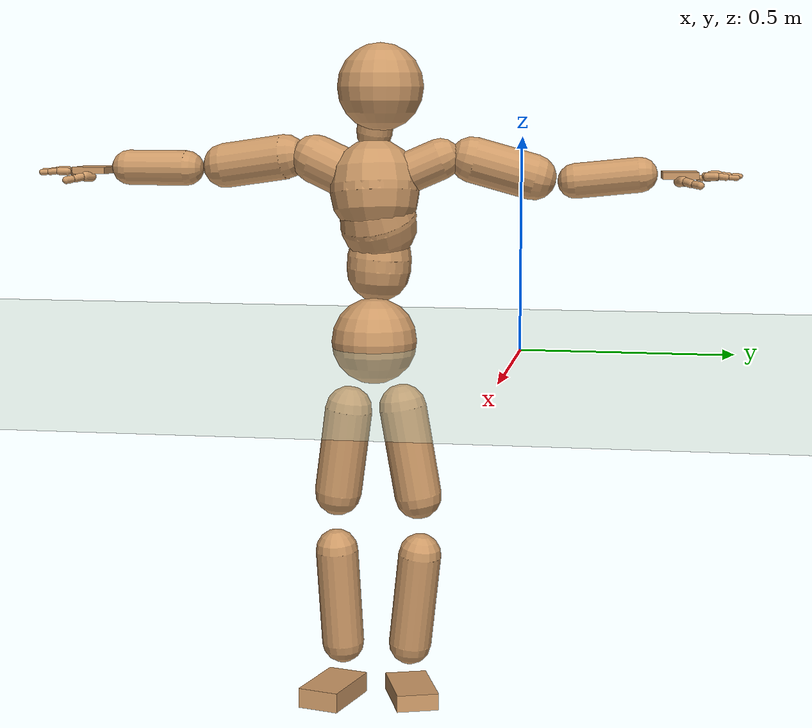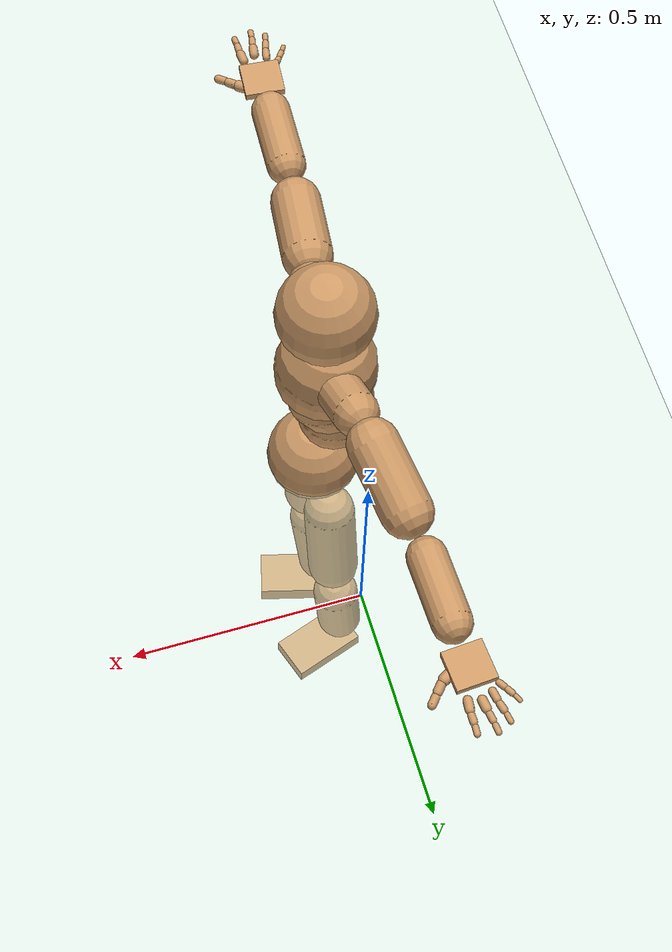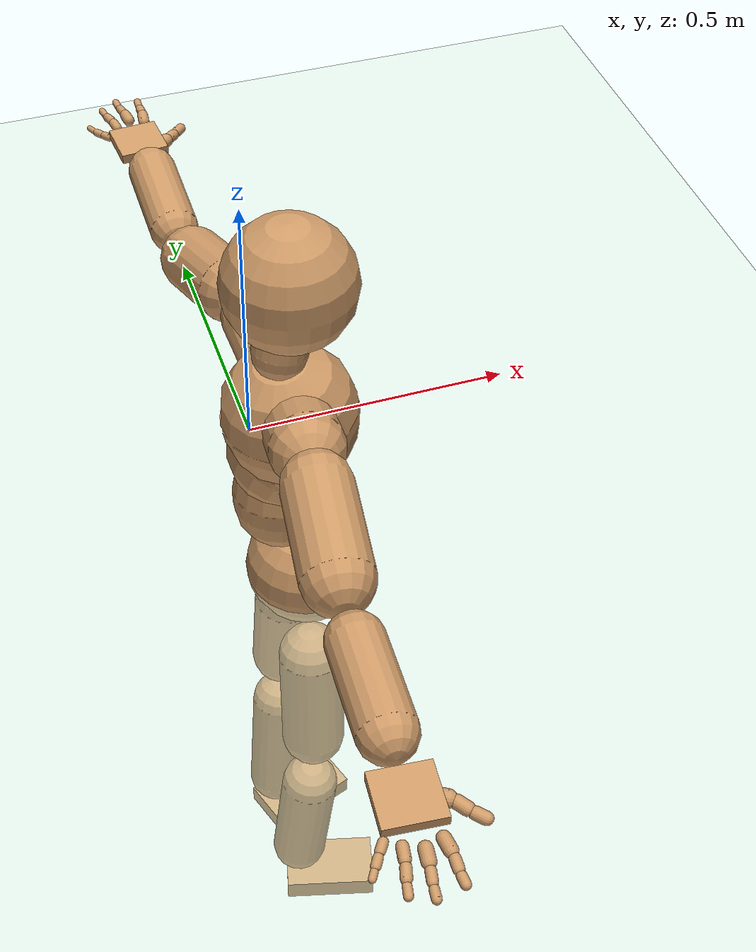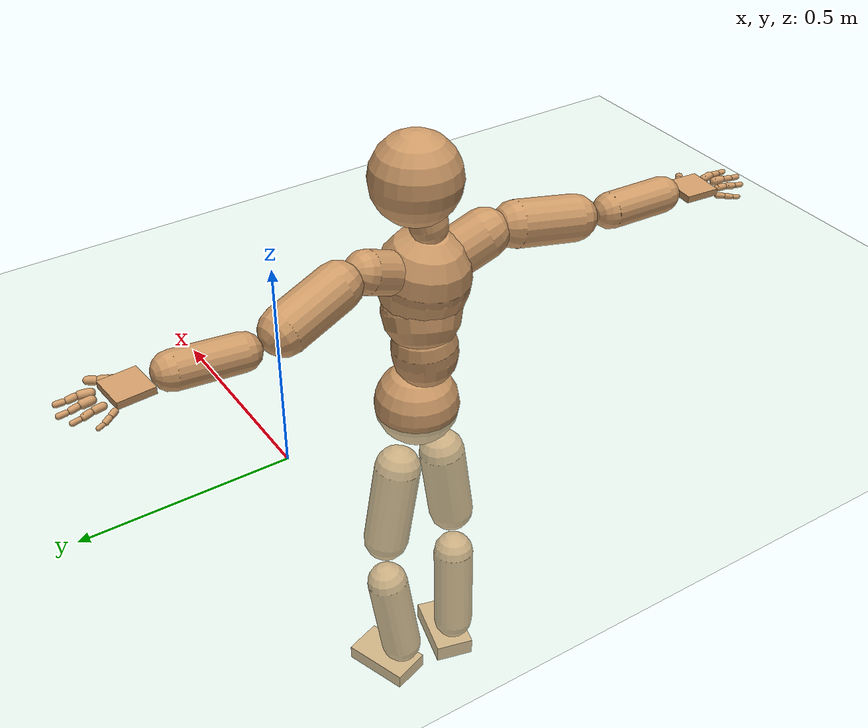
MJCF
<mujoco model="humanoid">
  <compiler coordinate="local" angle="radian"/>
  <default>
    <joint damping="0.0" armature="0.01" stiffness="0.0" limited="true"/>
    <geom conaffinity="1" condim="3" contype="7" margin="0.001" rgba="0.8 0.6 .4 1"/>
  </default>
  <asset>
    <texture type="skybox" builtin="gradient" rgb1=".4 .5 .6" rgb2="0 0 0" width="100" height="100"/>
    <texture builtin="flat" height="1278" mark="cross" markrgb="1 1 1" name="texgeom" random="0.01" rgb1="0.8 0.6 0.4" rgb2="0.8 0.6 0.4" type="cube" width="127"/>
    <texture builtin="checker" height="100" name="texplane" rgb1="0 0 0" rgb2="0.8 0.8 0.8" type="2d" width="100"/>
    <material name="MatPlane" reflectance="0.5" shininess="1" specular="1" texrepeat="60 60" texture="texplane"/>
    <material name="geom" texture="texgeom" texuniform="true"/>
  </asset>
  <worldbody>
    <light cutoff="100" diffuse="1 1 1" dir="-0 0 -1.3" directional="true" exponent="1" pos="0 0 1.3" specular=".1 .1 .1"/>
    <geom conaffinity="1" condim="3" name="floor" pos="0 0 0" rgba="0.8 0.9 0.8 1" size="100 100 .2" type="plane" material="MatPlane"/>
    <body name="Pelvis" pos="0.0015 -0.3507 0.0139">
      <freejoint name="Pelvis"/>
      <geom type="sphere" contype="1" conaffinity="1" density="500" size="0.1033" pos="0.0000 0.0000 0.0000" name="Pelvis"/>
      <body name="L_Hip" pos="-0.0174 0.0542 -0.0915">
        <joint name="L_Hip_x" type="hinge" pos="0 0 0" axis="1 0 0" stiffness="800" damping="80" armature="0.02" range="-180.0000 180.0000"/>
        <joint name="L_Hip_y" type="hinge" pos="0 0 0" axis="0 1 0" stiffness="800" damping="80" armature="0.02" range="-180.0000 180.0000"/>
        <joint name="L_Hip_z" type="hinge" pos="0 0 0" axis="0 0 1" stiffness="800" damping="80" armature="0.02" range="-180.0000 180.0000"/>
        <geom type="capsule" contype="1" conaffinity="1" density="500" fromto="-0.0004 0.0125 -0.0725 -0.0018 0.0501 -0.2898" size="0.0574" name="L_Hip"/>
        <body name="L_Knee" pos="-0.0022 0.0626 -0.3623">
          <joint name="L_Knee_x" type="hinge" pos="0 0 0" axis="1 0 0" stiffness="800" damping="80" armature="0.02" range="-180.0000 180.0000"/>
          <joint name="L_Knee_y" type="hinge" pos="0 0 0" axis="0 1 0" stiffness="800" damping="80" armature="0.02" range="-180.0000 180.0000"/>
          <joint name="L_Knee_z" type="hinge" pos="0 0 0" axis="0 0 1" stiffness="800" damping="80" armature="0.02" range="-180.0000 180.0000"/>
          <geom type="capsule" contype="1" conaffinity="1" density="500" fromto="-0.0072 -0.0091 -0.0778 -0.0288 -0.0363 -0.3110" size="0.0527" name="L_Knee"/>
          <body name="L_Ankle" pos="-0.036 -0.0453 -0.3888">
            <joint name="L_Ankle_x" type="hinge" pos="0 0 0" axis="1 0 0" stiffness="800" damping="80" armature="0.02" range="-180.0000 180.0000"/>
            <joint name="L_Ankle_y" type="hinge" pos="0 0 0" axis="0 1 0" stiffness="800" damping="80" armature="0.02" range="-180.0000 180.0000"/>
            <joint name="L_Ankle_z" type="hinge" pos="0 0 0" axis="0 0 1" stiffness="800" damping="80" armature="0.02" range="-180.0000 180.0000"/>
            <geom type="box" contype="1" conaffinity="1" density="500" pos="0.0637 0.0217 -0.0279" size="0.0882 0.0512 0.0205" quat="0.9866 0.0000 0.0000 0.1633" name="L_Ankle"/>
            <body name="L_Toe" pos="0.1273 0.0433 -0.0557">
              <joint name="L_Toe_x" type="hinge" pos="0 0 0" axis="1 0 0" stiffness="500" damping="50" armature="0.02" range="-180.0000 180.0000"/>
              <joint name="L_Toe_y" type="hinge" pos="0 0 0" axis="0 1 0" stiffness="500" damping="50" armature="0.02" range="-180.0000 180.0000"/>
              <joint name="L_Toe_z" type="hinge" pos="0 0 0" axis="0 0 1" stiffness="500" damping="50" armature="0.02" range="-180.0000 180.0000"/>
              <geom type="box" contype="1" conaffinity="1" density="500" pos="0.0000 0.0000 0.0287" size="0.001 0.0024 0.0011" quat="0.9858 0.0000 0.0000 0.1678" name="L_Toe"/>
            </body>
          </body>
        </body>
      </body>
      <body name="R_Hip" pos="-0.0108 -0.0561 -0.1024">
        <joint name="R_Hip_x" type="hinge" pos="0 0 0" axis="1 0 0" stiffness="800" damping="80" armature="0.02" range="-180.0000 180.0000"/>
        <joint name="R_Hip_y" type="hinge" pos="0 0 0" axis="0 1 0" stiffness="800" damping="80" armature="0.02" range="-180.0000 180.0000"/>
        <joint name="R_Hip_z" type="hinge" pos="0 0 0" axis="0 0 1" stiffness="800" damping="80" armature="0.02" range="-180.0000 180.0000"/>
        <geom type="capsule" contype="1" conaffinity="1" density="500" fromto="-0.0020 -0.0094 -0.0692 -0.0080 -0.0376 -0.2768" size="0.0572" name="R_Hip"/>
        <body name="R_Knee" pos="-0.0101 -0.047 -0.346">
          <joint name="R_Knee_x" type="hinge" pos="0 0 0" axis="1 0 0" stiffness="800" damping="80" armature="0.02" range="-180.0000 180.0000"/>
          <joint name="R_Knee_y" type="hinge" pos="0 0 0" axis="0 1 0" stiffness="800" damping="80" armature="0.02" range="-180.0000 180.0000"/>
          <joint name="R_Knee_z" type="hinge" pos="0 0 0" axis="0 0 1" stiffness="800" damping="80" armature="0.02" range="-180.0000 180.0000"/>
          <geom type="capsule" contype="1" conaffinity="1" density="500" fromto="-0.0070 0.0035 -0.0802 -0.0279 0.0139 -0.3208" size="0.0524" name="R_Knee"/>
          <body name="R_Ankle" pos="-0.0349 0.0174 -0.4009">
            <joint name="R_Ankle_x" type="hinge" pos="0 0 0" axis="1 0 0" stiffness="800" damping="80" armature="0.02" range="-180.0000 180.0000"/>
            <joint name="R_Ankle_y" type="hinge" pos="0 0 0" axis="0 1 0" stiffness="800" damping="80" armature="0.02" range="-180.0000 180.0000"/>
            <joint name="R_Ankle_z" type="hinge" pos="0 0 0" axis="0 0 1" stiffness="800" damping="80" armature="0.02" range="-180.0000 180.0000"/>
            <geom type="box" contype="1" conaffinity="1" density="500" pos="0.0670 -0.0174 -0.0274" size="0.0882 0.0512 0.0244" quat="0.9920 0.0000 0.0000 -0.1266" name="R_Ankle"/>
            <body name="R_Toe" pos="0.1341 -0.0348 -0.0548">
              <joint name="R_Toe_x" type="hinge" pos="0 0 0" axis="1 0 0" stiffness="500" damping="50" armature="0.02" range="-180.0000 180.0000"/>
              <joint name="R_Toe_y" type="hinge" pos="0 0 0" axis="0 1 0" stiffness="500" damping="50" armature="0.02" range="-180.0000 180.0000"/>
              <joint name="R_Toe_z" type="hinge" pos="0 0 0" axis="0 0 1" stiffness="500" damping="50" armature="0.02" range="-180.0000 180.0000"/>
              <geom type="box" contype="1" conaffinity="1" density="500" pos="0.0000 0.0000 0.0243" size="0.001 0.0024 0.0011" quat="0.9930 0.0000 0.0000 -0.1180" name="R_Toe"/>
            </body>
          </body>
        </body>
      </body>
      <body name="Torso" pos="-0.0412 -0.0009 0.1084">
        <joint name="Torso_x" type="hinge" pos="0 0 0" axis="1 0 0" stiffness="1000" damping="100" armature="0.02" range="-180.0000 180.0000"/>
        <joint name="Torso_y" type="hinge" pos="0 0 0" axis="0 1 0" stiffness="1000" damping="100" armature="0.02" range="-180.0000 180.0000"/>
        <joint name="Torso_z" type="hinge" pos="0 0 0" axis="0 0 1" stiffness="1000" damping="100" armature="0.02" range="-180.0000 180.0000"/>
        <geom type="capsule" contype="1" conaffinity="1" density="500" fromto="0.0008 0.0072 0.0886 0.0005 0.0048 0.0591" size="0.0775" name="Torso"/>
        <body name="Spine" pos="0.0014 0.0119 0.1477">
          <joint name="Spine_x" type="hinge" pos="0 0 0" axis="1 0 0" stiffness="1000" damping="100" armature="0.02" range="-180.0000 180.0000"/>
          <joint name="Spine_y" type="hinge" pos="0 0 0" axis="0 1 0" stiffness="1000" damping="100" armature="0.02" range="-180.0000 180.0000"/>
          <joint name="Spine_z" type="hinge" pos="0 0 0" axis="0 0 1" stiffness="1000" damping="100" armature="0.02" range="-180.0000 180.0000"/>
          <geom type="capsule" contype="1" conaffinity="1" density="500" fromto="0.0139 -0.0064 0.0341 0.0093 -0.0043 0.0227" size="0.093" name="Spine"/>
          <body name="Chest" pos="0.0232 -0.0107 0.0568">
            <joint name="Chest_x" type="hinge" pos="0 0 0" axis="1 0 0" stiffness="1000" damping="100" armature="0.02" range="-180.0000 180.0000"/>
            <joint name="Chest_y" type="hinge" pos="0 0 0" axis="0 1 0" stiffness="1000" damping="100" armature="0.02" range="-180.0000 180.0000"/>
            <joint name="Chest_z" type="hinge" pos="0 0 0" axis="0 0 1" stiffness="1000" damping="100" armature="0.02" range="-180.0000 180.0000"/>
            <geom type="capsule" contype="1" conaffinity="1" density="500" fromto="-0.0083 -0.0031 0.0601 -0.0055 -0.0021 0.0400" size="0.1076" name="Chest"/>
            <body name="Neck" pos="-0.0271 -0.0105 0.1553">
              <joint name="Neck_x" type="hinge" pos="0 0 0" axis="1 0 0" stiffness="500" damping="50" armature="0.02" range="-180.0000 180.0000"/>
              <joint name="Neck_y" type="hinge" pos="0 0 0" axis="0 1 0" stiffness="500" damping="50" armature="0.02" range="-180.0000 180.0000"/>
              <joint name="Neck_z" type="hinge" pos="0 0 0" axis="0 0 1" stiffness="500" damping="50" armature="0.02" range="-180.0000 180.0000"/>
              <geom type="capsule" contype="1" conaffinity="1" density="500" fromto="0.0056 0.0047 0.0267 0.0226 0.0189 0.1069" size="0.0433" name="Neck"/>
              <body name="Head" pos="0.0282 0.0236 0.1336">
                <joint name="Head_x" type="hinge" pos="0 0 0" axis="1 0 0" stiffness="500" damping="50" armature="0.02" range="-180.0000 180.0000"/>
                <joint name="Head_y" type="hinge" pos="0 0 0" axis="0 1 0" stiffness="500" damping="50" armature="0.02" range="-180.0000 180.0000"/>
                <joint name="Head_z" type="hinge" pos="0 0 0" axis="0 0 1" stiffness="500" damping="50" armature="0.02" range="-180.0000 180.0000"/>
                <geom type="sphere" contype="1" conaffinity="1" density="500" size="0.1032" pos="0.0000 0.0000 0.0000" name="Head"/>
              </body>
            </body>
            <body name="L_Thorax" pos="-0.0054 0.0418 0.0719">
              <joint name="L_Thorax_x" type="hinge" pos="0 0 0" axis="1 0 0" stiffness="500" damping="50" armature="0.02" range="-180.0000 180.0000"/>
              <joint name="L_Thorax_y" type="hinge" pos="0 0 0" axis="0 1 0" stiffness="500" damping="50" armature="0.02" range="-180.0000 180.0000"/>
              <joint name="L_Thorax_z" type="hinge" pos="0 0 0" axis="0 0 1" stiffness="500" damping="50" armature="0.02" range="-180.0000 180.0000"/>
              <geom type="capsule" contype="1" conaffinity="1" density="500" fromto="-0.0040 0.0277 0.0121 -0.0159 0.1109 0.0483" size="0.0491" name="L_Thorax"/>
              <body name="L_Shoulder" pos="-0.0199 0.1387 0.0604">
                <joint name="L_Shoulder_x" type="hinge" pos="0 0 0" axis="1 0 0" stiffness="500" damping="50" armature="0.02" range="-180.0000 180.0000"/>
                <joint name="L_Shoulder_y" type="hinge" pos="0 0 0" axis="0 1 0" stiffness="500" damping="50" armature="0.02" range="-180.0000 180.0000"/>
                <joint name="L_Shoulder_z" type="hinge" pos="0 0 0" axis="0 0 1" stiffness="500" damping="50" armature="0.02" range="-180.0000 180.0000"/>
                <geom type="capsule" contype="1" conaffinity="1" density="500" fromto="-0.0090 0.0475 -0.0138 -0.0358 0.1902 -0.0551" size="0.055" name="L_Shoulder"/>
                <body name="L_Elbow" pos="-0.0448 0.2377 -0.0689">
                  <joint name="L_Elbow_x" type="hinge" pos="0 0 0" axis="1 0 0" stiffness="500" damping="50" armature="0.02" range="-720.0000 720.0000"/>
                  <joint name="L_Elbow_y" type="hinge" pos="0 0 0" axis="0 1 0" stiffness="500" damping="50" armature="0.02" range="-720.0000 720.0000"/>
                  <joint name="L_Elbow_z" type="hinge" pos="0 0 0" axis="0 0 1" stiffness="500" damping="50" armature="0.02" range="-720.0000 720.0000"/>
                  <geom type="capsule" contype="1" conaffinity="1" density="500" fromto="-0.0002 0.0507 0.0052 -0.0010 0.2028 0.0208" size="0.0417" name="L_Elbow"/>
                  <body name="L_Wrist" pos="-0.0012 0.2535 0.026">
                    <joint name="L_Wrist_x" type="hinge" pos="0 0 0" axis="1 0 0" stiffness="300" damping="30" armature="0.02" range="-180.0000 180.0000"/>
                    <joint name="L_Wrist_y" type="hinge" pos="0 0 0" axis="0 1 0" stiffness="300" damping="30" armature="0.02" range="-180.0000 180.0000"/>
                    <joint name="L_Wrist_z" type="hinge" pos="0 0 0" axis="0 0 1" stiffness="300" damping="30" armature="0.02" range="-180.0000 180.0000"/>
                    <geom type="box" contype="1" conaffinity="1" density="500" pos="-0.0030 0.0421 -0.0055" size="0.0419 0.0423 0.0081" quat="0.7321 0.0000 0.0000 -0.6812" name="L_Wrist"/>
                    <body name="L_Index1" pos="0.0205 0.099 -0.0078">
                      <joint name="L_Index1_x" type="hinge" pos="0 0 0" axis="1 0 0" stiffness="100" damping="10" armature="0.02" range="-180.0000 180.0000"/>
                      <joint name="L_Index1_y" type="hinge" pos="0 0 0" axis="0 1 0" stiffness="100" damping="10" armature="0.02" range="-180.0000 180.0000"/>
                      <joint name="L_Index1_z" type="hinge" pos="0 0 0" axis="0 0 1" stiffness="100" damping="10" armature="0.02" range="-180.0000 180.0000"/>
                      <geom type="capsule" contype="1" conaffinity="1" density="500" fromto="0.0007 0.0064 0.0003 0.0028 0.0257 0.0013" size="0.0097" name="L_Index1"/>
                      <body name="L_Index2" pos="0.0035 0.0321 0.0016">
                        <joint name="L_Index2_x" type="hinge" pos="0 0 0" axis="1 0 0" stiffness="100" damping="10" armature="0.02" range="-180.0000 180.0000"/>
                        <joint name="L_Index2_y" type="hinge" pos="0 0 0" axis="0 1 0" stiffness="100" damping="10" armature="0.02" range="-180.0000 180.0000"/>
                        <joint name="L_Index2_z" type="hinge" pos="0 0 0" axis="0 0 1" stiffness="100" damping="10" armature="0.02" range="-180.0000 180.0000"/>
                        <geom type="capsule" contype="1" conaffinity="1" density="500" fromto="-0.0001 0.0045 -0.0005 -0.0004 0.0181 -0.0021" size="0.0078" name="L_Index2"/>
                        <body name="L_Index3" pos="-0.0005 0.0226 -0.0026">
                          <joint name="L_Index3_x" type="hinge" pos="0 0 0" axis="1 0 0" stiffness="100" damping="10" armature="0.02" range="-180.0000 180.0000"/>
                          <joint name="L_Index3_y" type="hinge" pos="0 0 0" axis="0 1 0" stiffness="100" damping="10" armature="0.02" range="-180.0000 180.0000"/>
                          <joint name="L_Index3_z" type="hinge" pos="0 0 0" axis="0 0 1" stiffness="100" damping="10" armature="0.02" range="-180.0000 180.0000"/>
                          <geom type="capsule" contype="1" conaffinity="1" density="500" fromto="0.0003 0.0049 -0.0001 0.0012 0.0197 -0.0005" size="0.0066" name="L_Index3"/>
                        </body>
                      </body>
                    </body>
                    <body name="L_Middle1" pos="-0.0039 0.107 -0.0051">
                      <joint name="L_Middle1_x" type="hinge" pos="0 0 0" axis="1 0 0" stiffness="100" damping="10" armature="0.02" range="-180.0000 180.0000"/>
                      <joint name="L_Middle1_y" type="hinge" pos="0 0 0" axis="0 1 0" stiffness="100" damping="10" armature="0.02" range="-180.0000 180.0000"/>
                      <joint name="L_Middle1_z" type="hinge" pos="0 0 0" axis="0 0 1" stiffness="100" damping="10" armature="0.02" range="-180.0000 180.0000"/>
                      <geom type="capsule" contype="1" conaffinity="1" density="500" fromto="-0.0009 0.0062 0.0001 -0.0034 0.0247 0.0004" size="0.0098" name="L_Middle1"/>
                      <body name="L_Middle2" pos="-0.0043 0.0308 0.0005">
                        <joint name="L_Middle2_x" type="hinge" pos="0 0 0" axis="1 0 0" stiffness="100" damping="10" armature="0.02" range="-180.0000 180.0000"/>
                        <joint name="L_Middle2_y" type="hinge" pos="0 0 0" axis="0 1 0" stiffness="100" damping="10" armature="0.02" range="-180.0000 180.0000"/>
                        <joint name="L_Middle2_z" type="hinge" pos="0 0 0" axis="0 0 1" stiffness="100" damping="10" armature="0.02" range="-180.0000 180.0000"/>
                        <geom type="capsule" contype="1" conaffinity="1" density="500" fromto="-0.0009 0.0047 -0.0005 -0.0036 0.0188 -0.0020" size="0.0073" name="L_Middle2"/>
                        <body name="L_Middle3" pos="-0.0044 0.0234 -0.0025">
                          <joint name="L_Middle3_x" type="hinge" pos="0 0 0" axis="1 0 0" stiffness="100" damping="10" armature="0.02" range="-180.0000 180.0000"/>
                          <joint name="L_Middle3_y" type="hinge" pos="0 0 0" axis="0 1 0" stiffness="100" damping="10" armature="0.02" range="-180.0000 180.0000"/>
                          <joint name="L_Middle3_z" type="hinge" pos="0 0 0" axis="0 0 1" stiffness="100" damping="10" armature="0.02" range="-180.0000 180.0000"/>
                          <geom type="capsule" contype="1" conaffinity="1" density="500" fromto="-0.0005 0.0051 -0.0001 -0.0020 0.0204 -0.0004" size="0.0063" name="L_Middle3"/>
                        </body>
                      </body>
                    </body>
                    <body name="L_Pinky1" pos="-0.0456 0.0822 -0.014">
                      <joint name="L_Pinky1_x" type="hinge" pos="0 0 0" axis="1 0 0" stiffness="100" damping="10" armature="0.02" range="-180.0000 180.0000"/>
                      <joint name="L_Pinky1_y" type="hinge" pos="0 0 0" axis="0 1 0" stiffness="100" damping="10" armature="0.02" range="-180.0000 180.0000"/>
                      <joint name="L_Pinky1_z" type="hinge" pos="0 0 0" axis="0 0 1" stiffness="100" damping="10" armature="0.02" range="-180.0000 180.0000"/>
                      <geom type="capsule" contype="1" conaffinity="1" density="500" fromto="-0.0024 0.0033 -0.0003 -0.0095 0.0133 -0.0013" size="0.007" name="L_Pinky1"/>
                      <body name="L_Pinky2" pos="-0.0118 0.0166 -0.0016">
                        <joint name="L_Pinky2_x" type="hinge" pos="0 0 0" axis="1 0 0" stiffness="100" damping="10" armature="0.02" range="-180.0000 180.0000"/>
                        <joint name="L_Pinky2_y" type="hinge" pos="0 0 0" axis="0 1 0" stiffness="100" damping="10" armature="0.02" range="-180.0000 180.0000"/>
                        <joint name="L_Pinky2_z" type="hinge" pos="0 0 0" axis="0 0 1" stiffness="100" damping="10" armature="0.02" range="-180.0000 180.0000"/>
                        <geom type="capsule" contype="1" conaffinity="1" density="500" fromto="-0.0022 0.0032 -0.0004 -0.0087 0.0130 -0.0016" size="0.0067" name="L_Pinky2"/>
                        <body name="L_Pinky3" pos="-0.0109 0.0162 -0.0019">
                          <joint name="L_Pinky3_x" type="hinge" pos="0 0 0" axis="1 0 0" stiffness="100" damping="10" armature="0.02" range="-180.0000 180.0000"/>
                          <joint name="L_Pinky3_y" type="hinge" pos="0 0 0" axis="0 1 0" stiffness="100" damping="10" armature="0.02" range="-180.0000 180.0000"/>
                          <joint name="L_Pinky3_z" type="hinge" pos="0 0 0" axis="0 0 1" stiffness="100" damping="10" armature="0.02" range="-180.0000 180.0000"/>
                          <geom type="capsule" contype="1" conaffinity="1" density="500" fromto="-0.0018 0.0036 0.0000 -0.0071 0.0146 0.0000" size="0.005" name="L_Pinky3"/>
                        </body>
                      </body>
                    </body>
                    <body name="L_Ring1" pos="-0.0285 0.0952 -0.0083">
                      <joint name="L_Ring1_x" type="hinge" pos="0 0 0" axis="1 0 0" stiffness="100" damping="10" armature="0.02" range="-180.0000 180.0000"/>
                      <joint name="L_Ring1_y" type="hinge" pos="0 0 0" axis="0 1 0" stiffness="100" damping="10" armature="0.02" range="-180.0000 180.0000"/>
                      <joint name="L_Ring1_z" type="hinge" pos="0 0 0" axis="0 0 1" stiffness="100" damping="10" armature="0.02" range="-180.0000 180.0000"/>
                      <geom type="capsule" contype="1" conaffinity="1" density="500" fromto="-0.0010 0.0057 0.0001 -0.0040 0.0228 0.0003" size="0.0083" name="L_Ring1"/>
                      <body name="L_Ring2" pos="-0.005 0.0284 0.0004">
                        <joint name="L_Ring2_x" type="hinge" pos="0 0 0" axis="1 0 0" stiffness="100" damping="10" armature="0.02" range="-180.0000 180.0000"/>
                        <joint name="L_Ring2_y" type="hinge" pos="0 0 0" axis="0 1 0" stiffness="100" damping="10" armature="0.02" range="-180.0000 180.0000"/>
                        <joint name="L_Ring2_z" type="hinge" pos="0 0 0" axis="0 0 1" stiffness="100" damping="10" armature="0.02" range="-180.0000 180.0000"/>
                        <geom type="capsule" contype="1" conaffinity="1" density="500" fromto="-0.0013 0.0046 -0.0005 -0.0053 0.0184 -0.0019" size="0.0077" name="L_Ring2"/>
                        <body name="L_Ring3" pos="-0.0067 0.023 -0.0024">
                          <joint name="L_Ring3_x" type="hinge" pos="0 0 0" axis="1 0 0" stiffness="100" damping="10" armature="0.02" range="-180.0000 180.0000"/>
                          <joint name="L_Ring3_y" type="hinge" pos="0 0 0" axis="0 1 0" stiffness="100" damping="10" armature="0.02" range="-180.0000 180.0000"/>
                          <joint name="L_Ring3_z" type="hinge" pos="0 0 0" axis="0 0 1" stiffness="100" damping="10" armature="0.02" range="-180.0000 180.0000"/>
                          <geom type="capsule" contype="1" conaffinity="1" density="500" fromto="-0.0009 0.0050 -0.0001 -0.0037 0.0200 -0.0003" size="0.0059" name="L_Ring3"/>
                        </body>
                      </body>
                    </body>
                    <body name="L_Thumb1" pos="0.027 0.0378 -0.0193">
                      <joint name="L_Thumb1_x" type="hinge" pos="0 0 0" axis="1 0 0" stiffness="100" damping="10" armature="0.02" range="-180.0000 180.0000"/>
                      <joint name="L_Thumb1_y" type="hinge" pos="0 0 0" axis="0 1 0" stiffness="100" damping="10" armature="0.02" range="-180.0000 180.0000"/>
                      <joint name="L_Thumb1_z" type="hinge" pos="0 0 0" axis="0 0 1" stiffness="100" damping="10" armature="0.02" range="-180.0000 180.0000"/>
                      <geom type="capsule" contype="1" conaffinity="1" density="500" fromto="0.0053 0.0032 0.0004 0.0212 0.0126 0.0015" size="0.0124" name="L_Thumb1"/>
                      <body name="L_Thumb2" pos="0.0265 0.0158 0.0019">
                        <joint name="L_Thumb2_x" type="hinge" pos="0 0 0" axis="1 0 0" stiffness="100" damping="10" armature="0.02" range="-180.0000 180.0000"/>
                        <joint name="L_Thumb2_y" type="hinge" pos="0 0 0" axis="0 1 0" stiffness="100" damping="10" armature="0.02" range="-180.0000 180.0000"/>
                        <joint name="L_Thumb2_z" type="hinge" pos="0 0 0" axis="0 0 1" stiffness="100" damping="10" armature="0.02" range="-180.0000 180.0000"/>
                        <geom type="capsule" contype="1" conaffinity="1" density="500" fromto="0.0033 0.0039 -0.0010 0.0133 0.0154 -0.0041" size="0.0099" name="L_Thumb2"/>
                        <body name="L_Thumb3" pos="0.0166 0.0193 -0.0052">
                          <joint name="L_Thumb3_x" type="hinge" pos="0 0 0" axis="1 0 0" stiffness="100" damping="10" armature="0.02" range="-180.0000 180.0000"/>
                          <joint name="L_Thumb3_y" type="hinge" pos="0 0 0" axis="0 1 0" stiffness="100" damping="10" armature="0.02" range="-180.0000 180.0000"/>
                          <joint name="L_Thumb3_z" type="hinge" pos="0 0 0" axis="0 0 1" stiffness="100" damping="10" armature="0.02" range="-180.0000 180.0000"/>
                          <geom type="capsule" contype="1" conaffinity="1" density="500" fromto="0.0037 0.0043 -0.0006 0.0149 0.0170 -0.0025" size="0.009" name="L_Thumb3"/>
                        </body>
                      </body>
                    </body>
                  </body>
                </body>
              </body>
            </body>
            <body name="R_Thorax" pos="-0.009 -0.0469 0.073">
              <joint name="R_Thorax_x" type="hinge" pos="0 0 0" axis="1 0 0" stiffness="500" damping="50" armature="0.02" range="-180.0000 180.0000"/>
              <joint name="R_Thorax_y" type="hinge" pos="0 0 0" axis="0 1 0" stiffness="500" damping="50" armature="0.02" range="-180.0000 180.0000"/>
              <joint name="R_Thorax_z" type="hinge" pos="0 0 0" axis="0 0 1" stiffness="500" damping="50" armature="0.02" range="-180.0000 180.0000"/>
              <geom type="capsule" contype="1" conaffinity="1" density="500" fromto="-0.0036 -0.0256 0.0114 -0.0144 -0.1026 0.0456" size="0.0582" name="R_Thorax"/>
              <body name="R_Shoulder" pos="-0.018 -0.1282 0.057">
                <joint name="R_Shoulder_x" type="hinge" pos="0 0 0" axis="1 0 0" stiffness="500" damping="50" armature="0.02" range="-180.0000 180.0000"/>
                <joint name="R_Shoulder_y" type="hinge" pos="0 0 0" axis="0 1 0" stiffness="500" damping="50" armature="0.02" range="-180.0000 180.0000"/>
                <joint name="R_Shoulder_z" type="hinge" pos="0 0 0" axis="0 0 1" stiffness="500" damping="50" armature="0.02" range="-180.0000 180.0000"/>
                <geom type="capsule" contype="1" conaffinity="1" density="500" fromto="-0.0062 -0.0509 -0.0075 -0.0249 -0.2034 -0.0300" size="0.0543" name="R_Shoulder"/>
                <body name="R_Elbow" pos="-0.0311 -0.2543 -0.0376">
                  <joint name="R_Elbow_x" type="hinge" pos="0 0 0" axis="1 0 0" stiffness="500" damping="50" armature="0.02" range="-720.0000 720.0000"/>
                  <joint name="R_Elbow_y" type="hinge" pos="0 0 0" axis="0 1 0" stiffness="500" damping="50" armature="0.02" range="-720.0000 720.0000"/>
                  <joint name="R_Elbow_z" type="hinge" pos="0 0 0" axis="0 0 1" stiffness="500" damping="50" armature="0.02" range="-720.0000 720.0000"/>
                  <geom type="capsule" contype="1" conaffinity="1" density="500" fromto="-0.0024 -0.0493 0.0001 -0.0097 -0.1970 0.0005" size="0.0427" name="R_Elbow"/>
                  <body name="R_Wrist" pos="-0.0121 -0.2463 0.0006">
                    <joint name="R_Wrist_x" type="hinge" pos="0 0 0" axis="1 0 0" stiffness="300" damping="30" armature="0.02" range="-180.0000 180.0000"/>
                    <joint name="R_Wrist_y" type="hinge" pos="0 0 0" axis="0 1 0" stiffness="300" damping="30" armature="0.02" range="-180.0000 180.0000"/>
                    <joint name="R_Wrist_z" type="hinge" pos="0 0 0" axis="0 0 1" stiffness="300" damping="30" armature="0.02" range="-180.0000 180.0000"/>
                    <geom type="box" contype="1" conaffinity="1" density="500" pos="-0.0036 -0.0419 -0.0072" size="0.0419 0.0433 0.0082" quat="0.7368 0.0000 0.0000 0.6761" name="R_Wrist"/>
                    <body name="R_Index1" pos="0.0194 -0.0985 -0.0114">
                      <joint name="R_Index1_x" type="hinge" pos="0 0 0" axis="1 0 0" stiffness="100" damping="10" armature="0.02" range="-180.0000 180.0000"/>
                      <joint name="R_Index1_y" type="hinge" pos="0 0 0" axis="0 1 0" stiffness="100" damping="10" armature="0.02" range="-180.0000 180.0000"/>
                      <joint name="R_Index1_z" type="hinge" pos="0 0 0" axis="0 0 1" stiffness="100" damping="10" armature="0.02" range="-180.0000 180.0000"/>
                      <geom type="capsule" contype="1" conaffinity="1" density="500" fromto="0.0007 -0.0064 0.0003 0.0028 -0.0257 0.0013" size="0.0097" name="R_Index1"/>
                      <body name="R_Index2" pos="0.0035 -0.0321 0.0016">
                        <joint name="R_Index2_x" type="hinge" pos="0 0 0" axis="1 0 0" stiffness="100" damping="10" armature="0.02" range="-180.0000 180.0000"/>
                        <joint name="R_Index2_y" type="hinge" pos="0 0 0" axis="0 1 0" stiffness="100" damping="10" armature="0.02" range="-180.0000 180.0000"/>
                        <joint name="R_Index2_z" type="hinge" pos="0 0 0" axis="0 0 1" stiffness="100" damping="10" armature="0.02" range="-180.0000 180.0000"/>
                        <geom type="capsule" contype="1" conaffinity="1" density="500" fromto="-0.0001 -0.0045 -0.0005 -0.0004 -0.0181 -0.0021" size="0.0078" name="R_Index2"/>
                        <body name="R_Index3" pos="-0.0005 -0.0226 -0.0026">
                          <joint name="R_Index3_x" type="hinge" pos="0 0 0" axis="1 0 0" stiffness="100" damping="10" armature="0.02" range="-180.0000 180.0000"/>
                          <joint name="R_Index3_y" type="hinge" pos="0 0 0" axis="0 1 0" stiffness="100" damping="10" armature="0.02" range="-180.0000 180.0000"/>
                          <joint name="R_Index3_z" type="hinge" pos="0 0 0" axis="0 0 1" stiffness="100" damping="10" armature="0.02" range="-180.0000 180.0000"/>
                          <geom type="capsule" contype="1" conaffinity="1" density="500" fromto="0.0003 -0.0041 -0.0001 0.0012 -0.0165 -0.0005" size="0.0069" name="R_Index3"/>
                        </body>
                      </body>
                    </body>
                    <body name="R_Middle1" pos="-0.0051 -0.1065 -0.0087">
                      <joint name="R_Middle1_x" type="hinge" pos="0 0 0" axis="1 0 0" stiffness="100" damping="10" armature="0.02" range="-180.0000 180.0000"/>
                      <joint name="R_Middle1_y" type="hinge" pos="0 0 0" axis="0 1 0" stiffness="100" damping="10" armature="0.02" range="-180.0000 180.0000"/>
                      <joint name="R_Middle1_z" type="hinge" pos="0 0 0" axis="0 0 1" stiffness="100" damping="10" armature="0.02" range="-180.0000 180.0000"/>
                      <geom type="capsule" contype="1" conaffinity="1" density="500" fromto="-0.0009 -0.0062 0.0001 -0.0034 -0.0247 0.0004" size="0.0098" name="R_Middle1"/>
                      <body name="R_Middle2" pos="-0.0043 -0.0308 0.0005">
                        <joint name="R_Middle2_x" type="hinge" pos="0 0 0" axis="1 0 0" stiffness="100" damping="10" armature="0.02" range="-180.0000 180.0000"/>
                        <joint name="R_Middle2_y" type="hinge" pos="0 0 0" axis="0 1 0" stiffness="100" damping="10" armature="0.02" range="-180.0000 180.0000"/>
                        <joint name="R_Middle2_z" type="hinge" pos="0 0 0" axis="0 0 1" stiffness="100" damping="10" armature="0.02" range="-180.0000 180.0000"/>
                        <geom type="capsule" contype="1" conaffinity="1" density="500" fromto="-0.0009 -0.0047 -0.0005 -0.0036 -0.0188 -0.0020" size="0.0073" name="R_Middle2"/>
                        <body name="R_Middle3" pos="-0.0044 -0.0234 -0.0025">
                          <joint name="R_Middle3_x" type="hinge" pos="0 0 0" axis="1 0 0" stiffness="100" damping="10" armature="0.02" range="-180.0000 180.0000"/>
                          <joint name="R_Middle3_y" type="hinge" pos="0 0 0" axis="0 1 0" stiffness="100" damping="10" armature="0.02" range="-180.0000 180.0000"/>
                          <joint name="R_Middle3_z" type="hinge" pos="0 0 0" axis="0 0 1" stiffness="100" damping="10" armature="0.02" range="-180.0000 180.0000"/>
                          <geom type="capsule" contype="1" conaffinity="1" density="500" fromto="-0.0005 -0.0043 -0.0001 -0.0020 -0.0172 -0.0004" size="0.0066" name="R_Middle3"/>
                        </body>
                      </body>
                    </body>
                    <body name="R_Pinky1" pos="-0.0467 -0.0817 -0.0176">
                      <joint name="R_Pinky1_x" type="hinge" pos="0 0 0" axis="1 0 0" stiffness="100" damping="10" armature="0.02" range="-180.0000 180.0000"/>
                      <joint name="R_Pinky1_y" type="hinge" pos="0 0 0" axis="0 1 0" stiffness="100" damping="10" armature="0.02" range="-180.0000 180.0000"/>
                      <joint name="R_Pinky1_z" type="hinge" pos="0 0 0" axis="0 0 1" stiffness="100" damping="10" armature="0.02" range="-180.0000 180.0000"/>
                      <geom type="capsule" contype="1" conaffinity="1" density="500" fromto="-0.0024 -0.0033 -0.0003 -0.0095 -0.0133 -0.0013" size="0.007" name="R_Pinky1"/>
                      <body name="R_Pinky2" pos="-0.0118 -0.0166 -0.0016">
                        <joint name="R_Pinky2_x" type="hinge" pos="0 0 0" axis="1 0 0" stiffness="100" damping="10" armature="0.02" range="-180.0000 180.0000"/>
                        <joint name="R_Pinky2_y" type="hinge" pos="0 0 0" axis="0 1 0" stiffness="100" damping="10" armature="0.02" range="-180.0000 180.0000"/>
                        <joint name="R_Pinky2_z" type="hinge" pos="0 0 0" axis="0 0 1" stiffness="100" damping="10" armature="0.02" range="-180.0000 180.0000"/>
                        <geom type="capsule" contype="1" conaffinity="1" density="500" fromto="-0.0022 -0.0032 -0.0004 -0.0087 -0.0130 -0.0016" size="0.0067" name="R_Pinky2"/>
                        <body name="R_Pinky3" pos="-0.0109 -0.0162 -0.0019">
                          <joint name="R_Pinky3_x" type="hinge" pos="0 0 0" axis="1 0 0" stiffness="100" damping="10" armature="0.02" range="-180.0000 180.0000"/>
                          <joint name="R_Pinky3_y" type="hinge" pos="0 0 0" axis="0 1 0" stiffness="100" damping="10" armature="0.02" range="-180.0000 180.0000"/>
                          <joint name="R_Pinky3_z" type="hinge" pos="0 0 0" axis="0 0 1" stiffness="100" damping="10" armature="0.02" range="-180.0000 180.0000"/>
                          <geom type="capsule" contype="1" conaffinity="1" density="500" fromto="-0.0018 -0.0028 0.0000 -0.0071 -0.0114 0.0000" size="0.0052" name="R_Pinky3"/>
                        </body>
                      </body>
                    </body>
                    <body name="R_Ring1" pos="-0.0296 -0.0948 -0.0119">
                      <joint name="R_Ring1_x" type="hinge" pos="0 0 0" axis="1 0 0" stiffness="100" damping="10" armature="0.02" range="-180.0000 180.0000"/>
                      <joint name="R_Ring1_y" type="hinge" pos="0 0 0" axis="0 1 0" stiffness="100" damping="10" armature="0.02" range="-180.0000 180.0000"/>
                      <joint name="R_Ring1_z" type="hinge" pos="0 0 0" axis="0 0 1" stiffness="100" damping="10" armature="0.02" range="-180.0000 180.0000"/>
                      <geom type="capsule" contype="1" conaffinity="1" density="500" fromto="-0.0010 -0.0057 0.0001 -0.0040 -0.0228 0.0003" size="0.0083" name="R_Ring1"/>
                      <body name="R_Ring2" pos="-0.005 -0.0284 0.0004">
                        <joint name="R_Ring2_x" type="hinge" pos="0 0 0" axis="1 0 0" stiffness="100" damping="10" armature="0.02" range="-180.0000 180.0000"/>
                        <joint name="R_Ring2_y" type="hinge" pos="0 0 0" axis="0 1 0" stiffness="100" damping="10" armature="0.02" range="-180.0000 180.0000"/>
                        <joint name="R_Ring2_z" type="hinge" pos="0 0 0" axis="0 0 1" stiffness="100" damping="10" armature="0.02" range="-180.0000 180.0000"/>
                        <geom type="capsule" contype="1" conaffinity="1" density="500" fromto="-0.0013 -0.0046 -0.0005 -0.0053 -0.0184 -0.0019" size="0.0077" name="R_Ring2"/>
                        <body name="R_Ring3" pos="-0.0067 -0.023 -0.0024">
                          <joint name="R_Ring3_x" type="hinge" pos="0 0 0" axis="1 0 0" stiffness="100" damping="10" armature="0.02" range="-180.0000 180.0000"/>
                          <joint name="R_Ring3_y" type="hinge" pos="0 0 0" axis="0 1 0" stiffness="100" damping="10" armature="0.02" range="-180.0000 180.0000"/>
                          <joint name="R_Ring3_z" type="hinge" pos="0 0 0" axis="0 0 1" stiffness="100" damping="10" armature="0.02" range="-180.0000 180.0000"/>
                          <geom type="capsule" contype="1" conaffinity="1" density="500" fromto="-0.0009 -0.0042 -0.0001 -0.0037 -0.0168 -0.0003" size="0.0062" name="R_Ring3"/>
                        </body>
                      </body>
                    </body>
                    <body name="R_Thumb1" pos="0.0259 -0.0374 -0.0229">
                      <joint name="R_Thumb1_x" type="hinge" pos="0 0 0" axis="1 0 0" stiffness="100" damping="10" armature="0.02" range="-180.0000 180.0000"/>
                      <joint name="R_Thumb1_y" type="hinge" pos="0 0 0" axis="0 1 0" stiffness="100" damping="10" armature="0.02" range="-180.0000 180.0000"/>
                      <joint name="R_Thumb1_z" type="hinge" pos="0 0 0" axis="0 0 1" stiffness="100" damping="10" armature="0.02" range="-180.0000 180.0000"/>
                      <geom type="capsule" contype="1" conaffinity="1" density="500" fromto="0.0053 -0.0032 0.0004 0.0212 -0.0126 0.0015" size="0.0124" name="R_Thumb1"/>
                      <body name="R_Thumb2" pos="0.0265 -0.0158 0.0019">
                        <joint name="R_Thumb2_x" type="hinge" pos="0 0 0" axis="1 0 0" stiffness="100" damping="10" armature="0.02" range="-180.0000 180.0000"/>
                        <joint name="R_Thumb2_y" type="hinge" pos="0 0 0" axis="0 1 0" stiffness="100" damping="10" armature="0.02" range="-180.0000 180.0000"/>
                        <joint name="R_Thumb2_z" type="hinge" pos="0 0 0" axis="0 0 1" stiffness="100" damping="10" armature="0.02" range="-180.0000 180.0000"/>
                        <geom type="capsule" contype="1" conaffinity="1" density="500" fromto="0.0033 -0.0039 -0.0010 0.0133 -0.0154 -0.0041" size="0.0099" name="R_Thumb2"/>
                        <body name="R_Thumb3" pos="0.0166 -0.0193 -0.0052">
                          <joint name="R_Thumb3_x" type="hinge" pos="0 0 0" axis="1 0 0" stiffness="100" damping="10" armature="0.02" range="-180.0000 180.0000"/>
                          <joint name="R_Thumb3_y" type="hinge" pos="0 0 0" axis="0 1 0" stiffness="100" damping="10" armature="0.02" range="-180.0000 180.0000"/>
                          <joint name="R_Thumb3_z" type="hinge" pos="0 0 0" axis="0 0 1" stiffness="100" damping="10" armature="0.02" range="-180.0000 180.0000"/>
                          <geom type="capsule" contype="1" conaffinity="1" density="500" fromto="0.0037 -0.0035 -0.0006 0.0149 -0.0138 -0.0025" size="0.0092" name="R_Thumb3"/>
                        </body>
                      </body>
                    </body>
                  </body>
                </body>
              </body>
            </body>
          </body>
        </body>
      </body>
    </body>
  </worldbody>
  <actuator>
    <motor name="L_Hip_x" joint="L_Hip_x" gear="500"/>
    <motor name="L_Hip_y" joint="L_Hip_y" gear="500"/>
    <motor name="L_Hip_z" joint="L_Hip_z" gear="500"/>
    <motor name="L_Knee_x" joint="L_Knee_x" gear="500"/>
    <motor name="L_Knee_y" joint="L_Knee_y" gear="500"/>
    <motor name="L_Knee_z" joint="L_Knee_z" gear="500"/>
    <motor name="L_Ankle_x" joint="L_Ankle_x" gear="500"/>
    <motor name="L_Ankle_y" joint="L_Ankle_y" gear="500"/>
    <motor name="L_Ankle_z" joint="L_Ankle_z" gear="500"/>
    <motor name="L_Toe_x" joint="L_Toe_x" gear="500"/>
    <motor name="L_Toe_y" joint="L_Toe_y" gear="500"/>
    <motor name="L_Toe_z" joint="L_Toe_z" gear="500"/>
    <motor name="R_Hip_x" joint="R_Hip_x" gear="500"/>
    <motor name="R_Hip_y" joint="R_Hip_y" gear="500"/>
    <motor name="R_Hip_z" joint="R_Hip_z" gear="500"/>
    <motor name="R_Knee_x" joint="R_Knee_x" gear="500"/>
    <motor name="R_Knee_y" joint="R_Knee_y" gear="500"/>
    <motor name="R_Knee_z" joint="R_Knee_z" gear="500"/>
    <motor name="R_Ankle_x" joint="R_Ankle_x" gear="500"/>
    <motor name="R_Ankle_y" joint="R_Ankle_y" gear="500"/>
    <motor name="R_Ankle_z" joint="R_Ankle_z" gear="500"/>
    <motor name="R_Toe_x" joint="R_Toe_x" gear="500"/>
    <motor name="R_Toe_y" joint="R_Toe_y" gear="500"/>
    <motor name="R_Toe_z" joint="R_Toe_z" gear="500"/>
    <motor name="Torso_x" joint="Torso_x" gear="500"/>
    <motor name="Torso_y" joint="Torso_y" gear="500"/>
    <motor name="Torso_z" joint="Torso_z" gear="500"/>
    <motor name="Spine_x" joint="Spine_x" gear="500"/>
    <motor name="Spine_y" joint="Spine_y" gear="500"/>
    <motor name="Spine_z" joint="Spine_z" gear="500"/>
    <motor name="Chest_x" joint="Chest_x" gear="500"/>
    <motor name="Chest_y" joint="Chest_y" gear="500"/>
    <motor name="Chest_z" joint="Chest_z" gear="500"/>
    <motor name="Neck_x" joint="Neck_x" gear="500"/>
    <motor name="Neck_y" joint="Neck_y" gear="500"/>
    <motor name="Neck_z" joint="Neck_z" gear="500"/>
    <motor name="Head_x" joint="Head_x" gear="500"/>
    <motor name="Head_y" joint="Head_y" gear="500"/>
    <motor name="Head_z" joint="Head_z" gear="500"/>
    <motor name="L_Thorax_x" joint="L_Thorax_x" gear="500"/>
    <motor name="L_Thorax_y" joint="L_Thorax_y" gear="500"/>
    <motor name="L_Thorax_z" joint="L_Thorax_z" gear="500"/>
    <motor name="L_Shoulder_x" joint="L_Shoulder_x" gear="500"/>
    <motor name="L_Shoulder_y" joint="L_Shoulder_y" gear="500"/>
    <motor name="L_Shoulder_z" joint="L_Shoulder_z" gear="500"/>
    <motor name="L_Elbow_x" joint="L_Elbow_x" gear="500"/>
    <motor name="L_Elbow_y" joint="L_Elbow_y" gear="500"/>
    <motor name="L_Elbow_z" joint="L_Elbow_z" gear="500"/>
    <motor name="L_Wrist_x" joint="L_Wrist_x" gear="500"/>
    <motor name="L_Wrist_y" joint="L_Wrist_y" gear="500"/>
    <motor name="L_Wrist_z" joint="L_Wrist_z" gear="500"/>
    <motor name="L_Index1_x" joint="L_Index1_x" gear="500"/>
    <motor name="L_Index1_y" joint="L_Index1_y" gear="500"/>
    <motor name="L_Index1_z" joint="L_Index1_z" gear="500"/>
    <motor name="L_Index2_x" joint="L_Index2_x" gear="500"/>
    <motor name="L_Index2_y" joint="L_Index2_y" gear="500"/>
    <motor name="L_Index2_z" joint="L_Index2_z" gear="500"/>
    <motor name="L_Index3_x" joint="L_Index3_x" gear="500"/>
    <motor name="L_Index3_y" joint="L_Index3_y" gear="500"/>
    <motor name="L_Index3_z" joint="L_Index3_z" gear="500"/>
    <motor name="L_Middle1_x" joint="L_Middle1_x" gear="500"/>
    <motor name="L_Middle1_y" joint="L_Middle1_y" gear="500"/>
    <motor name="L_Middle1_z" joint="L_Middle1_z" gear="500"/>
    <motor name="L_Middle2_x" joint="L_Middle2_x" gear="500"/>
    <motor name="L_Middle2_y" joint="L_Middle2_y" gear="500"/>
    <motor name="L_Middle2_z" joint="L_Middle2_z" gear="500"/>
    <motor name="L_Middle3_x" joint="L_Middle3_x" gear="500"/>
    <motor name="L_Middle3_y" joint="L_Middle3_y" gear="500"/>
    <motor name="L_Middle3_z" joint="L_Middle3_z" gear="500"/>
    <motor name="L_Pinky1_x" joint="L_Pinky1_x" gear="500"/>
    <motor name="L_Pinky1_y" joint="L_Pinky1_y" gear="500"/>
    <motor name="L_Pinky1_z" joint="L_Pinky1_z" gear="500"/>
    <motor name="L_Pinky2_x" joint="L_Pinky2_x" gear="500"/>
    <motor name="L_Pinky2_y" joint="L_Pinky2_y" gear="500"/>
    <motor name="L_Pinky2_z" joint="L_Pinky2_z" gear="500"/>
    <motor name="L_Pinky3_x" joint="L_Pinky3_x" gear="500"/>
    <motor name="L_Pinky3_y" joint="L_Pinky3_y" gear="500"/>
    <motor name="L_Pinky3_z" joint="L_Pinky3_z" gear="500"/>
    <motor name="L_Ring1_x" joint="L_Ring1_x" gear="500"/>
    <motor name="L_Ring1_y" joint="L_Ring1_y" gear="500"/>
    <motor name="L_Ring1_z" joint="L_Ring1_z" gear="500"/>
    <motor name="L_Ring2_x" joint="L_Ring2_x" gear="500"/>
    <motor name="L_Ring2_y" joint="L_Ring2_y" gear="500"/>
    <motor name="L_Ring2_z" joint="L_Ring2_z" gear="500"/>
    <motor name="L_Ring3_x" joint="L_Ring3_x" gear="500"/>
    <motor name="L_Ring3_y" joint="L_Ring3_y" gear="500"/>
    <motor name="L_Ring3_z" joint="L_Ring3_z" gear="500"/>
    <motor name="L_Thumb1_x" joint="L_Thumb1_x" gear="500"/>
    <motor name="L_Thumb1_y" joint="L_Thumb1_y" gear="500"/>
    <motor name="L_Thumb1_z" joint="L_Thumb1_z" gear="500"/>
    <motor name="L_Thumb2_x" joint="L_Thumb2_x" gear="500"/>
    <motor name="L_Thumb2_y" joint="L_Thumb2_y" gear="500"/>
    <motor name="L_Thumb2_z" joint="L_Thumb2_z" gear="500"/>
    <motor name="L_Thumb3_x" joint="L_Thumb3_x" gear="500"/>
    <motor name="L_Thumb3_y" joint="L_Thumb3_y" gear="500"/>
    <motor name="L_Thumb3_z" joint="L_Thumb3_z" gear="500"/>
    <motor name="R_Thorax_x" joint="R_Thorax_x" gear="500"/>
    <motor name="R_Thorax_y" joint="R_Thorax_y" gear="500"/>
    <motor name="R_Thorax_z" joint="R_Thorax_z" gear="500"/>
    <motor name="R_Shoulder_x" joint="R_Shoulder_x" gear="500"/>
    <motor name="R_Shoulder_y" joint="R_Shoulder_y" gear="500"/>
    <motor name="R_Shoulder_z" joint="R_Shoulder_z" gear="500"/>
    <motor name="R_Elbow_x" joint="R_Elbow_x" gear="500"/>
    <motor name="R_Elbow_y" joint="R_Elbow_y" gear="500"/>
    <motor name="R_Elbow_z" joint="R_Elbow_z" gear="500"/>
    <motor name="R_Wrist_x" joint="R_Wrist_x" gear="500"/>
    <motor name="R_Wrist_y" joint="R_Wrist_y" gear="500"/>
    <motor name="R_Wrist_z" joint="R_Wrist_z" gear="500"/>
    <motor name="R_Index1_x" joint="R_Index1_x" gear="500"/>
    <motor name="R_Index1_y" joint="R_Index1_y" gear="500"/>
    <motor name="R_Index1_z" joint="R_Index1_z" gear="500"/>
    <motor name="R_Index2_x" joint="R_Index2_x" gear="500"/>
    <motor name="R_Index2_y" joint="R_Index2_y" gear="500"/>
    <motor name="R_Index2_z" joint="R_Index2_z" gear="500"/>
    <motor name="R_Index3_x" joint="R_Index3_x" gear="500"/>
    <motor name="R_Index3_y" joint="R_Index3_y" gear="500"/>
    <motor name="R_Index3_z" joint="R_Index3_z" gear="500"/>
    <motor name="R_Middle1_x" joint="R_Middle1_x" gear="500"/>
    <motor name="R_Middle1_y" joint="R_Middle1_y" gear="500"/>
    <motor name="R_Middle1_z" joint="R_Middle1_z" gear="500"/>
    <motor name="R_Middle2_x" joint="R_Middle2_x" gear="500"/>
    <motor name="R_Middle2_y" joint="R_Middle2_y" gear="500"/>
    <motor name="R_Middle2_z" joint="R_Middle2_z" gear="500"/>
    <motor name="R_Middle3_x" joint="R_Middle3_x" gear="500"/>
    <motor name="R_Middle3_y" joint="R_Middle3_y" gear="500"/>
    <motor name="R_Middle3_z" joint="R_Middle3_z" gear="500"/>
    <motor name="R_Pinky1_x" joint="R_Pinky1_x" gear="500"/>
    <motor name="R_Pinky1_y" joint="R_Pinky1_y" gear="500"/>
    <motor name="R_Pinky1_z" joint="R_Pinky1_z" gear="500"/>
    <motor name="R_Pinky2_x" joint="R_Pinky2_x" gear="500"/>
    <motor name="R_Pinky2_y" joint="R_Pinky2_y" gear="500"/>
    <motor name="R_Pinky2_z" joint="R_Pinky2_z" gear="500"/>
    <motor name="R_Pinky3_x" joint="R_Pinky3_x" gear="500"/>
    <motor name="R_Pinky3_y" joint="R_Pinky3_y" gear="500"/>
    <motor name="R_Pinky3_z" joint="R_Pinky3_z" gear="500"/>
    <motor name="R_Ring1_x" joint="R_Ring1_x" gear="500"/>
    <motor name="R_Ring1_y" joint="R_Ring1_y" gear="500"/>
    <motor name="R_Ring1_z" joint="R_Ring1_z" gear="500"/>
    <motor name="R_Ring2_x" joint="R_Ring2_x" gear="500"/>
    <motor name="R_Ring2_y" joint="R_Ring2_y" gear="500"/>
    <motor name="R_Ring2_z" joint="R_Ring2_z" gear="500"/>
    <motor name="R_Ring3_x" joint="R_Ring3_x" gear="500"/>
    <motor name="R_Ring3_y" joint="R_Ring3_y" gear="500"/>
    <motor name="R_Ring3_z" joint="R_Ring3_z" gear="500"/>
    <motor name="R_Thumb1_x" joint="R_Thumb1_x" gear="500"/>
    <motor name="R_Thumb1_y" joint="R_Thumb1_y" gear="500"/>
    <motor name="R_Thumb1_z" joint="R_Thumb1_z" gear="500"/>
    <motor name="R_Thumb2_x" joint="R_Thumb2_x" gear="500"/>
    <motor name="R_Thumb2_y" joint="R_Thumb2_y" gear="500"/>
    <motor name="R_Thumb2_z" joint="R_Thumb2_z" gear="500"/>
    <motor name="R_Thumb3_x" joint="R_Thumb3_x" gear="500"/>
    <motor name="R_Thumb3_y" joint="R_Thumb3_y" gear="500"/>
    <motor name="R_Thumb3_z" joint="R_Thumb3_z" gear="500"/>
  </actuator>
  <contact>
    <exclude body1="Torso" body2="Chest"/>
    <exclude body1="Head" body2="Chest"/>
    <exclude body1="R_Knee" body2="R_Toe"/>
    <exclude body1="R_Knee" body2="L_Ankle"/>
    <exclude body1="R_Knee" body2="L_Toe"/>
    <exclude body1="L_Knee" body2="L_Toe"/>
    <exclude body1="L_Knee" body2="R_Ankle"/>
    <exclude body1="L_Knee" body2="R_Toe"/>
    <exclude body1="L_Shoulder" body2="Chest"/>
    <exclude body1="R_Shoulder" body2="Chest"/>
  </contact>
  <sensor/>
  <size njmax="700" nconmax="700"/>
</mujoco>
